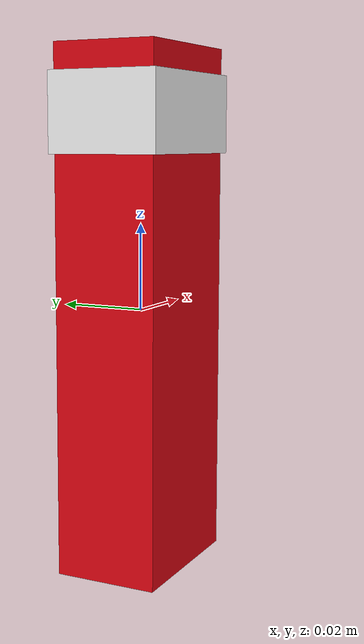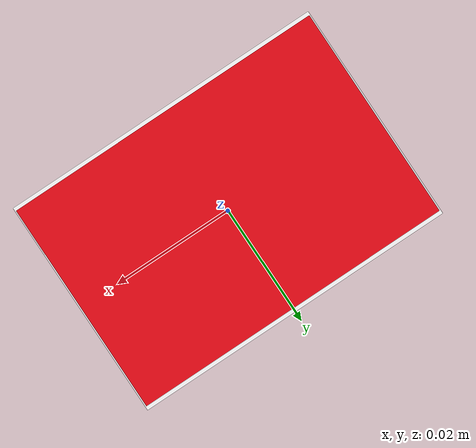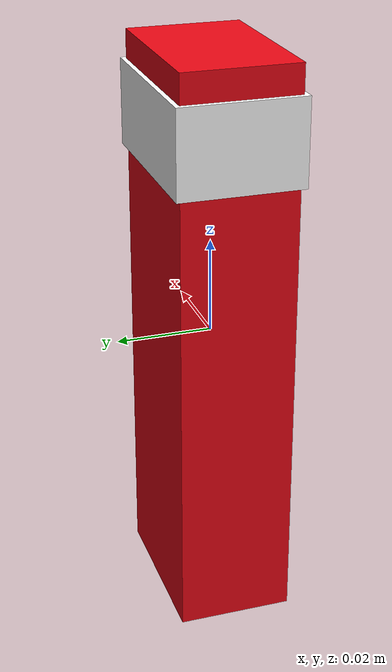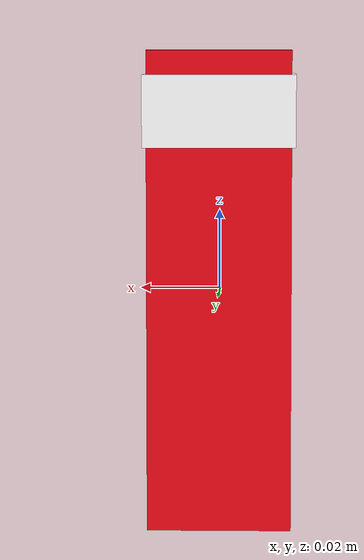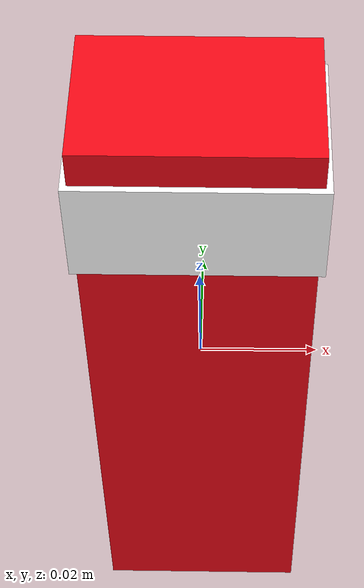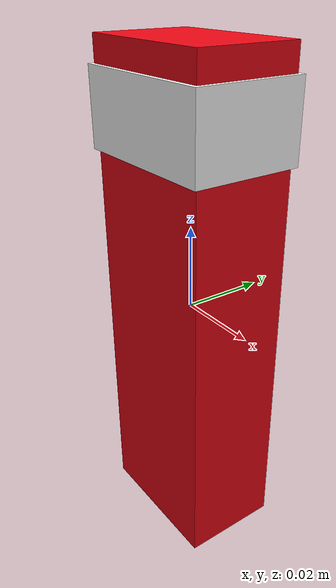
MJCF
<mujoco model="momentum_sentinel">
  <!-- L3-A4 object C: a tall, visibly fragile endpoint of the momentum chain. -->
  <asset>
    <material name="sentinel_red" rgba="0.92 0.03 0.08 1.00"
              specular="0.18" shininess="0.12"/>
    <material name="sentinel_white" rgba="1.00 1.00 1.00 1.00"/>
  </asset>
  <worldbody>
    <body>
      <body name="object">
        <geom name="visual" type="box" size="0.018 0.012 0.060"
              group="1" contype="0" conaffinity="0"
              material="sentinel_red"/>
        <!-- White cap makes tilt recognizable at 256x256. -->
        <geom name="visual_cap" type="box" size="0.019 0.013 0.009"
              pos="0 0 0.045" group="1" contype="0" conaffinity="0"
              material="sentinel_white"/>
        <geom name="collision" type="box" size="0.018 0.012 0.060"
              group="0" density="230"
              friction="0.62 0.04 0.004"
              solimp="0.995 0.995 0.001" solref="0.004 1"/>
      </body>
      <site rgba="0 0 0 0" size="0.004" pos="0 0 -0.060" name="bottom_site"/>
      <site rgba="0 0 0 0" size="0.004" pos="0 0 0.060" name="top_site"/>
      <site rgba="0 0 0 0" size="0.004" pos="0.018 0.012 0" name="horizontal_radius_site"/>
    </body>
  </worldbody>
</mujoco>
